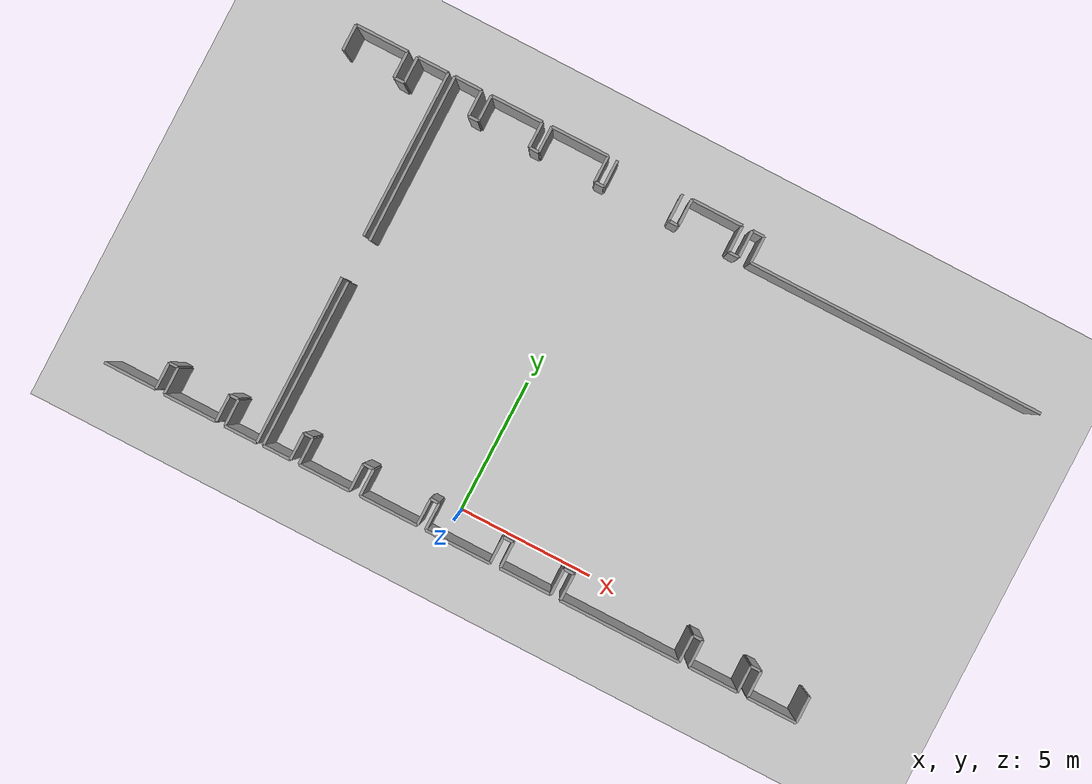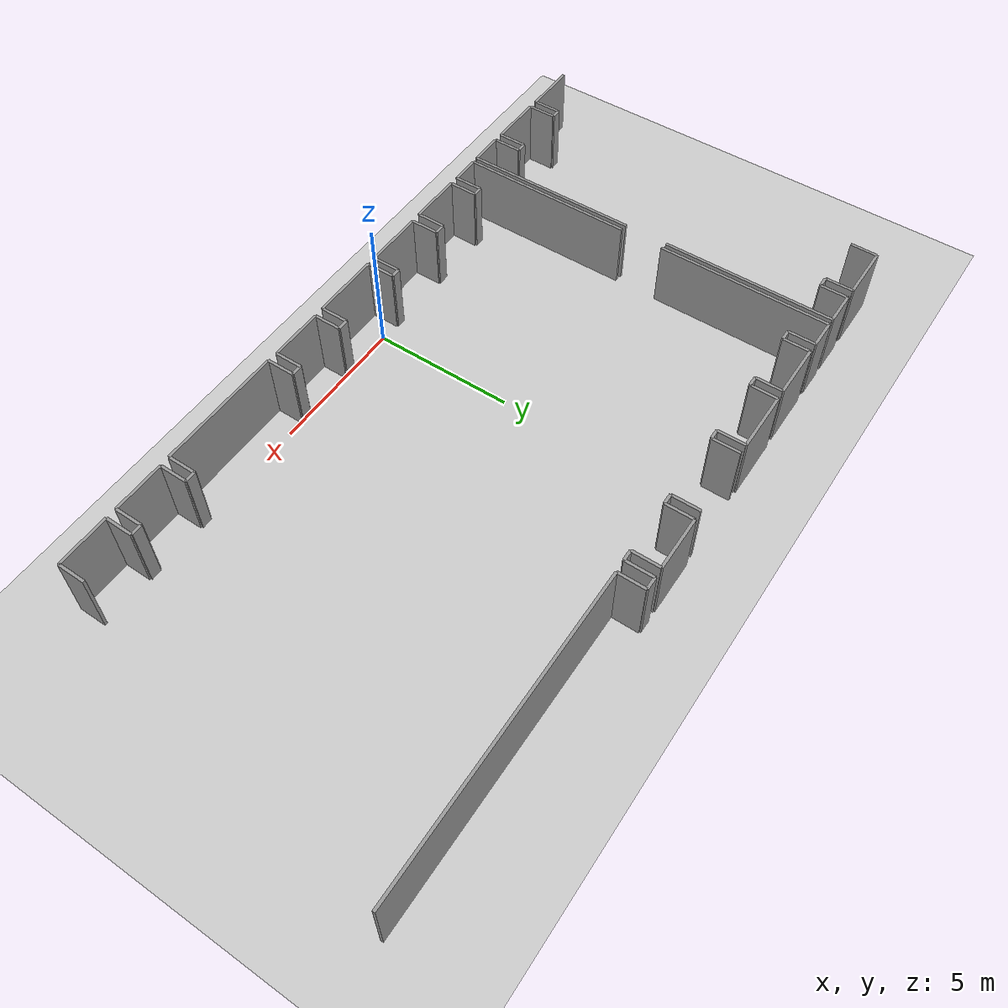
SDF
<sdf version="1.6">
 <world name="default">
  <model name="ground_plane">
   <static>1</static>
   <link name="link">
    <collision name="collision">
     <geometry><plane><normal>0 0 1</normal><size>100 100</size></plane></geometry>
     <surface><friction><ode><mu>100</mu><mu2>50</mu2></ode></friction></surface>
    </collision>
    <visual name="visual">
     <cast_shadows>0</cast_shadows>
     <geometry><plane><normal>0 0 1</normal><size>100 100</size></plane></geometry>
     <material>
      <script><uri>file://media/materials/scripts/gazebo.material</uri><name>Gazebo/Grey</name></script>
     </material>
    </visual>
   </link>
  </model>
  <model name="50010541">
   <static>1</static>
   <link name="Wall_0">
    <collision name="Wall_0_Collision">
     <geometry><box><size>1.21209043708 0.1 2.5</size></box></geometry>
     <pose>0.606045218539 0 1.25 0 0 0</pose>
    </collision>
    <visual name="Wall_0_Visual">
     <pose>0.606045218539 0 1.25 0 0 0</pose>
     <geometry><box><size>1.21209043708 0.1 2.5</size></box></geometry>
     <material>
      <script><uri>file://media/materials/scripts/gazebo.material</uri><name>Gazebo/Grey</name></script>
      <ambient>1 1 1 1</ambient>
     </material>
    </visual>
    <pose>45.8285199243 -14.0414862961 0 0 0 3.14159265359</pose>
   </link>
   <link name="Wall_1">
    <collision name="Wall_1_Collision">
     <geometry><box><size>1.00897515646 0.1 2.5</size></box></geometry>
     <pose>0.504487578231 0 1.25 0 0 0</pose>
    </collision>
    <visual name="Wall_1_Visual">
     <pose>0.504487578231 0 1.25 0 0 0</pose>
     <geometry><box><size>1.00897515646 0.1 2.5</size></box></geometry>
     <material>
      <script><uri>file://media/materials/scripts/gazebo.material</uri><name>Gazebo/Grey</name></script>
      <ambient>1 1 1 1</ambient>
     </material>
    </visual>
    <pose>44.6164294873 -14.0414862961 0 0 0 1.57079632679</pose>
   </link>
   <link name="Wall_2">
    <collision name="Wall_2_Collision">
     <geometry><box><size>0.333997689564 0.1 2.5</size></box></geometry>
     <pose>0.166998844782 0 1.25 0 0 0</pose>
    </collision>
    <visual name="Wall_2_Visual">
     <pose>0.166998844782 0 1.25 0 0 0</pose>
     <geometry><box><size>0.333997689564 0.1 2.5</size></box></geometry>
     <material>
      <script><uri>file://media/materials/scripts/gazebo.material</uri><name>Gazebo/Grey</name></script>
      <ambient>1 1 1 1</ambient>
     </material>
    </visual>
    <pose>44.6164294873 -13.0325111396 0 0 0 3.14159265359</pose>
   </link>
   <link name="Wall_3">
    <collision name="Wall_3_Collision">
     <geometry><box><size>1.00161222754 0.1 2.5</size></box></geometry>
     <pose>0.50080611377 0 1.25 0 0 0</pose>
    </collision>
    <visual name="Wall_3_Visual">
     <pose>0.50080611377 0 1.25 0 0 0</pose>
     <geometry><box><size>1.00161222754 0.1 2.5</size></box></geometry>
     <material>
      <script><uri>file://media/materials/scripts/gazebo.material</uri><name>Gazebo/Grey</name></script>
      <ambient>1 1 1 1</ambient>
     </material>
    </visual>
    <pose>44.2824317977 -13.0325111396 0 0 0 -1.57079632679</pose>
   </link>
   <link name="Wall_4">
    <collision name="Wall_4_Collision">
     <geometry><box><size>1.96691759867 0.1 2.5</size></box></geometry>
     <pose>0.983458799335 0 1.25 0 0 0</pose>
    </collision>
    <visual name="Wall_4_Visual">
     <pose>0.983458799335 0 1.25 0 0 0</pose>
     <geometry><box><size>1.96691759867 0.1 2.5</size></box></geometry>
     <material>
      <script><uri>file://media/materials/scripts/gazebo.material</uri><name>Gazebo/Grey</name></script>
      <ambient>1 1 1 1</ambient>
     </material>
    </visual>
    <pose>44.2824317977 -14.0341233671 0 0 0 3.14159265359</pose>
   </link>
   <link name="Wall_5">
    <collision name="Wall_5_Collision">
     <geometry><box><size>1.01608419128 0.1 2.5</size></box></geometry>
     <pose>0.508042095642 0 1.25 0 0 0</pose>
    </collision>
    <visual name="Wall_5_Visual">
     <pose>0.508042095642 0 1.25 0 0 0</pose>
     <geometry><box><size>1.01608419128 0.1 2.5</size></box></geometry>
     <material>
      <script><uri>file://media/materials/scripts/gazebo.material</uri><name>Gazebo/Grey</name></script>
      <ambient>1 1 1 1</ambient>
     </material>
    </visual>
    <pose>42.315514199 -14.0341233671 0 0 0 1.57079632679</pose>
   </link>
   <link name="Wall_6">
    <collision name="Wall_6_Collision">
     <geometry><box><size>0.337298312874 0.1 2.5</size></box></geometry>
     <pose>0.168649156437 0 1.25 0 0 0</pose>
    </collision>
    <visual name="Wall_6_Visual">
     <pose>0.168649156437 0 1.25 0 0 0</pose>
     <geometry><box><size>0.337298312874 0.1 2.5</size></box></geometry>
     <material>
      <script><uri>file://media/materials/scripts/gazebo.material</uri><name>Gazebo/Grey</name></script>
      <ambient>1 1 1 1</ambient>
     </material>
    </visual>
    <pose>42.315514199 -13.0180391759 0 0 0 3.14159265359</pose>
   </link>
   <link name="Wall_7">
    <collision name="Wall_7_Collision">
     <geometry><box><size>0.991583410559 0.1 2.5</size></box></geometry>
     <pose>0.49579170528 0 1.25 0 0 0</pose>
    </collision>
    <visual name="Wall_7_Visual">
     <pose>0.49579170528 0 1.25 0 0 0</pose>
     <geometry><box><size>0.991583410559 0.1 2.5</size></box></geometry>
     <material>
      <script><uri>file://media/materials/scripts/gazebo.material</uri><name>Gazebo/Grey</name></script>
      <ambient>1 1 1 1</ambient>
     </material>
    </visual>
    <pose>41.9782158862 -13.0180391759 0 0 0 -1.57079632679</pose>
   </link>
   <link name="Wall_8">
    <collision name="Wall_8_Collision">
     <geometry><box><size>1.94228987089 0.1 2.5</size></box></geometry>
     <pose>0.971144935447 0 1.25 0 0 0</pose>
    </collision>
    <visual name="Wall_8_Visual">
     <pose>0.971144935447 0 1.25 0 0 0</pose>
     <geometry><box><size>1.94228987089 0.1 2.5</size></box></geometry>
     <material>
      <script><uri>file://media/materials/scripts/gazebo.material</uri><name>Gazebo/Grey</name></script>
      <ambient>1 1 1 1</ambient>
     </material>
    </visual>
    <pose>41.9782158862 -14.0096225864 0 0 0 3.14159265359</pose>
   </link>
   <link name="Wall_149">
    <collision name="Wall_149_Collision">
     <geometry><box><size>0.959338859762 0.1 2.5</size></box></geometry>
     <pose>0.479669429881 0 1.25 0 0 0</pose>
    </collision>
    <visual name="Wall_149_Visual">
     <pose>0.479669429881 0 1.25 0 0 0</pose>
     <geometry><box><size>0.959338859762 0.1 2.5</size></box></geometry>
     <material>
      <script><uri>file://media/materials/scripts/gazebo.material</uri><name>Gazebo/Grey</name></script>
      <ambient>1 1 1 1</ambient>
     </material>
    </visual>
    <pose>42.3082782172 -0.988282787249 0 0 0 1.57079632679</pose>
   </link>
   <link name="Wall_150">
    <collision name="Wall_150_Collision">
     <geometry><box><size>1.95117616442 0.1 2.5</size></box></geometry>
     <pose>0.975588082211 0 1.25 0 0 0</pose>
    </collision>
    <visual name="Wall_150_Visual">
     <pose>0.975588082211 0 1.25 0 0 0</pose>
     <geometry><box><size>1.95117616442 0.1 2.5</size></box></geometry>
     <material>
      <script><uri>file://media/materials/scripts/gazebo.material</uri><name>Gazebo/Grey</name></script>
      <ambient>1 1 1 1</ambient>
     </material>
    </visual>
    <pose>42.3082782172 -0.0289439274879 0 0 0 0.0</pose>
   </link>
   <link name="Wall_151">
    <collision name="Wall_151_Collision">
     <geometry><box><size>0.980665964226 0.1 2.5</size></box></geometry>
     <pose>0.490332982113 0 1.25 0 0 0</pose>
    </collision>
    <visual name="Wall_151_Visual">
     <pose>0.490332982113 0 1.25 0 0 0</pose>
     <geometry><box><size>0.980665964226 0.1 2.5</size></box></geometry>
     <material>
      <script><uri>file://media/materials/scripts/gazebo.material</uri><name>Gazebo/Grey</name></script>
      <ambient>1 1 1 1</ambient>
     </material>
    </visual>
    <pose>44.2594543816 -0.0289439274879 0 0 0 -1.57079632679</pose>
   </link>
   <link name="Wall_152">
    <collision name="Wall_152_Collision">
     <geometry><box><size>0.381729780509 0.1 2.5</size></box></geometry>
     <pose>0.190864890254 0 1.25 0 0 0</pose>
    </collision>
    <visual name="Wall_152_Visual">
     <pose>0.190864890254 0 1.25 0 0 0</pose>
     <geometry><box><size>0.381729780509 0.1 2.5</size></box></geometry>
     <material>
      <script><uri>file://media/materials/scripts/gazebo.material</uri><name>Gazebo/Grey</name></script>
      <ambient>1 1 1 1</ambient>
     </material>
    </visual>
    <pose>44.2594543816 -1.00960989171 0 0 0 0.0</pose>
   </link>
   <link name="Wall_153">
    <collision name="Wall_153_Collision">
     <geometry><box><size>0.973556929405 0.1 2.5</size></box></geometry>
     <pose>0.486778464702 0 1.25 0 0 0</pose>
    </collision>
    <visual name="Wall_153_Visual">
     <pose>0.486778464702 0 1.25 0 0 0</pose>
     <geometry><box><size>0.973556929405 0.1 2.5</size></box></geometry>
     <material>
      <script><uri>file://media/materials/scripts/gazebo.material</uri><name>Gazebo/Grey</name></script>
      <ambient>1 1 1 1</ambient>
     </material>
    </visual>
    <pose>44.6411841621 -1.00960989171 0 0 0 1.57079632679</pose>
   </link>
   <link name="Wall_154">
    <collision name="Wall_154_Collision">
     <geometry><box><size>1.1693092811 0.1 2.5</size></box></geometry>
     <pose>0.584654640549 0 1.25 0 0 0</pose>
    </collision>
    <visual name="Wall_154_Visual">
     <pose>0.584654640549 0 1.25 0 0 0</pose>
     <geometry><box><size>1.1693092811 0.1 2.5</size></box></geometry>
     <material>
      <script><uri>file://media/materials/scripts/gazebo.material</uri><name>Gazebo/Grey</name></script>
      <ambient>1 1 1 1</ambient>
     </material>
    </visual>
    <pose>44.6411841621 -0.0360529623094 0 0 0 0.0</pose>
   </link>
   <link name="Wall_155">
    <collision name="Wall_155_Collision">
     <geometry><box><size>6.17406979549 0.1 2.5</size></box></geometry>
     <pose>3.08703489774 0 1.25 0 0 0</pose>
    </collision>
    <visual name="Wall_155_Visual">
     <pose>3.08703489774 0 1.25 0 0 0</pose>
     <geometry><box><size>6.17406979549 0.1 2.5</size></box></geometry>
     <material>
      <script><uri>file://media/materials/scripts/gazebo.material</uri><name>Gazebo/Grey</name></script>
      <ambient>1 1 1 1</ambient>
     </material>
    </visual>
    <pose>45.8104934432 -0.0360529623094 0 0 0 -1.57079632679</pose>
   </link>
   <link name="Wall_156">
    <collision name="Wall_156_Collision">
     <geometry><box><size>6.25381852363 0.1 2.5</size></box></geometry>
     <pose>3.12690926182 0 1.25 0 0 0</pose>
    </collision>
    <visual name="Wall_156_Visual">
     <pose>3.12690926182 0 1.25 0 0 0</pose>
     <geometry><box><size>6.25381852363 0.1 2.5</size></box></geometry>
     <material>
      <script><uri>file://media/materials/scripts/gazebo.material</uri><name>Gazebo/Grey</name></script>
      <ambient>1 1 1 1</ambient>
     </material>
    </visual>
    <pose>45.8104934432 -7.78769375294 0 0 0 -1.56791384691</pose>
   </link>
   <link name="Wall_192">
    <collision name="Wall_192_Collision">
     <geometry><box><size>0.984601322788 0.1 2.5</size></box></geometry>
     <pose>0.492300661394 0 1.25 0 0 0</pose>
    </collision>
    <visual name="Wall_192_Visual">
     <pose>0.492300661394 0 1.25 0 0 0</pose>
     <geometry><box><size>0.984601322788 0.1 2.5</size></box></geometry>
     <material>
      <script><uri>file://media/materials/scripts/gazebo.material</uri><name>Gazebo/Grey</name></script>
      <ambient>1 1 1 1</ambient>
     </material>
    </visual>
    <pose>66.2793089003 -13.0369542864 0 0 0 -1.57079632679</pose>
   </link>
   <link name="Wall_193">
    <collision name="Wall_193_Collision">
     <geometry><box><size>1.84289033044 0.1 2.5</size></box></geometry>
     <pose>0.921445165222 0 1.25 0 0 0</pose>
    </collision>
    <visual name="Wall_193_Visual">
     <pose>0.921445165222 0 1.25 0 0 0</pose>
     <geometry><box><size>1.84289033044 0.1 2.5</size></box></geometry>
     <material>
      <script><uri>file://media/materials/scripts/gazebo.material</uri><name>Gazebo/Grey</name></script>
      <ambient>1 1 1 1</ambient>
     </material>
    </visual>
    <pose>66.2793089003 -14.0215556092 0 0 0 3.14159265359</pose>
   </link>
   <link name="Wall_194">
    <collision name="Wall_194_Collision">
     <geometry><box><size>0.990948675308 0.1 2.5</size></box></geometry>
     <pose>0.495474337654 0 1.25 0 0 0</pose>
    </collision>
    <visual name="Wall_194_Visual">
     <pose>0.495474337654 0 1.25 0 0 0</pose>
     <geometry><box><size>0.990948675308 0.1 2.5</size></box></geometry>
     <material>
      <script><uri>file://media/materials/scripts/gazebo.material</uri><name>Gazebo/Grey</name></script>
      <ambient>1 1 1 1</ambient>
     </material>
    </visual>
    <pose>64.4364185698 -14.0215556092 0 0 0 1.57079632679</pose>
   </link>
   <link name="Wall_195">
    <collision name="Wall_195_Collision">
     <geometry><box><size>0.385030403819 0.1 2.5</size></box></geometry>
     <pose>0.192515201909 0 1.25 0 0 0</pose>
    </collision>
    <visual name="Wall_195_Visual">
     <pose>0.192515201909 0 1.25 0 0 0</pose>
     <geometry><box><size>0.385030403819 0.1 2.5</size></box></geometry>
     <material>
      <script><uri>file://media/materials/scripts/gazebo.material</uri><name>Gazebo/Grey</name></script>
      <ambient>1 1 1 1</ambient>
     </material>
    </visual>
    <pose>64.4364185698 -13.0306069338 0 0 0 3.14159265359</pose>
   </link>
   <link name="Wall_196">
    <collision name="Wall_196_Collision">
     <geometry><box><size>0.984601322788 0.1 2.5</size></box></geometry>
     <pose>0.492300661394 0 1.25 0 0 0</pose>
    </collision>
    <visual name="Wall_196_Visual">
     <pose>0.492300661394 0 1.25 0 0 0</pose>
     <geometry><box><size>0.984601322788 0.1 2.5</size></box></geometry>
     <material>
      <script><uri>file://media/materials/scripts/gazebo.material</uri><name>Gazebo/Grey</name></script>
      <ambient>1 1 1 1</ambient>
     </material>
    </visual>
    <pose>64.051388166 -13.0306069338 0 0 0 -1.57079632679</pose>
   </link>
   <link name="Wall_197">
    <collision name="Wall_197_Collision">
     <geometry><box><size>1.83666992497 0.1 2.5</size></box></geometry>
     <pose>0.918334962487 0 1.25 0 0 0</pose>
    </collision>
    <visual name="Wall_197_Visual">
     <pose>0.918334962487 0 1.25 0 0 0</pose>
     <geometry><box><size>1.83666992497 0.1 2.5</size></box></geometry>
     <material>
      <script><uri>file://media/materials/scripts/gazebo.material</uri><name>Gazebo/Grey</name></script>
      <ambient>1 1 1 1</ambient>
     </material>
    </visual>
    <pose>64.051388166 -14.0152082566 0 0 0 3.14159265359</pose>
   </link>
   <link name="Wall_198">
    <collision name="Wall_198_Collision">
     <geometry><box><size>1.0035164333 0.1 2.5</size></box></geometry>
     <pose>0.501758216648 0 1.25 0 0 0</pose>
    </collision>
    <visual name="Wall_198_Visual">
     <pose>0.501758216648 0 1.25 0 0 0</pose>
     <geometry><box><size>1.0035164333 0.1 2.5</size></box></geometry>
     <material>
      <script><uri>file://media/materials/scripts/gazebo.material</uri><name>Gazebo/Grey</name></script>
      <ambient>1 1 1 1</ambient>
     </material>
    </visual>
    <pose>62.214718241 -14.0152082566 0 0 0 1.57079632679</pose>
   </link>
   <link name="Wall_199">
    <collision name="Wall_199_Collision">
     <geometry><box><size>0.37233569878 0.1 2.5</size></box></geometry>
     <pose>0.18616784939 0 1.25 0 0 0</pose>
    </collision>
    <visual name="Wall_199_Visual">
     <pose>0.18616784939 0 1.25 0 0 0</pose>
     <geometry><box><size>0.37233569878 0.1 2.5</size></box></geometry>
     <material>
      <script><uri>file://media/materials/scripts/gazebo.material</uri><name>Gazebo/Grey</name></script>
      <ambient>1 1 1 1</ambient>
     </material>
    </visual>
    <pose>62.214718241 -13.0116918233 0 0 0 3.14159265359</pose>
   </link>
   <link name="Wall_200">
    <collision name="Wall_200_Collision">
     <geometry><box><size>1.0224315438 0.1 2.5</size></box></geometry>
     <pose>0.511215771902 0 1.25 0 0 0</pose>
    </collision>
    <visual name="Wall_200_Visual">
     <pose>0.511215771902 0 1.25 0 0 0</pose>
     <geometry><box><size>1.0224315438 0.1 2.5</size></box></geometry>
     <material>
      <script><uri>file://media/materials/scripts/gazebo.material</uri><name>Gazebo/Grey</name></script>
      <ambient>1 1 1 1</ambient>
     </material>
    </visual>
    <pose>61.8423825422 -13.0116918233 0 0 0 -1.57079632679</pose>
   </link>
   <link name="Wall_201">
    <collision name="Wall_201_Collision">
     <geometry><box><size>4.50458913587 0.1 2.5</size></box></geometry>
     <pose>2.25229456794 0 1.25 0 0 0</pose>
    </collision>
    <visual name="Wall_201_Visual">
     <pose>2.25229456794 0 1.25 0 0 0</pose>
     <geometry><box><size>4.50458913587 0.1 2.5</size></box></geometry>
     <material>
      <script><uri>file://media/materials/scripts/gazebo.material</uri><name>Gazebo/Grey</name></script>
      <ambient>1 1 1 1</ambient>
     </material>
    </visual>
    <pose>61.8423825422 -14.0341233671 0 0 0 3.14159265359</pose>
   </link>
   <link name="Wall_202">
    <collision name="Wall_202_Collision">
     <geometry><box><size>0.997803816028 0.1 2.5</size></box></geometry>
     <pose>0.498901908014 0 1.25 0 0 0</pose>
    </collision>
    <visual name="Wall_202_Visual">
     <pose>0.498901908014 0 1.25 0 0 0</pose>
     <geometry><box><size>0.997803816028 0.1 2.5</size></box></geometry>
     <material>
      <script><uri>file://media/materials/scripts/gazebo.material</uri><name>Gazebo/Grey</name></script>
      <ambient>1 1 1 1</ambient>
     </material>
    </visual>
    <pose>57.3377934064 -14.0341233671 0 0 0 1.57079632679</pose>
   </link>
   <link name="Wall_203">
    <collision name="Wall_203_Collision">
     <geometry><box><size>0.371954857629 0.1 2.5</size></box></geometry>
     <pose>0.185977428814 0 1.25 0 0 0</pose>
    </collision>
    <visual name="Wall_203_Visual">
     <pose>0.185977428814 0 1.25 0 0 0</pose>
     <geometry><box><size>0.371954857629 0.1 2.5</size></box></geometry>
     <material>
      <script><uri>file://media/materials/scripts/gazebo.material</uri><name>Gazebo/Grey</name></script>
      <ambient>1 1 1 1</ambient>
     </material>
    </visual>
    <pose>57.3377934064 -13.0363195511 0 0 0 3.14159265359</pose>
   </link>
   <link name="Wall_204">
    <collision name="Wall_204_Collision">
     <geometry><box><size>0.969875464944 0.1 2.5</size></box></geometry>
     <pose>0.484937732472 0 1.25 0 0 0</pose>
    </collision>
    <visual name="Wall_204_Visual">
     <pose>0.484937732472 0 1.25 0 0 0</pose>
     <geometry><box><size>0.969875464944 0.1 2.5</size></box></geometry>
     <material>
      <script><uri>file://media/materials/scripts/gazebo.material</uri><name>Gazebo/Grey</name></script>
      <ambient>1 1 1 1</ambient>
     </material>
    </visual>
    <pose>56.9658385487 -13.0363195511 0 0 0 -1.57079632679</pose>
   </link>
   <link name="Wall_205">
    <collision name="Wall_205_Collision">
     <geometry><box><size>1.92807180125 0.1 2.5</size></box></geometry>
     <pose>0.964035900626 0 1.25 0 0 0</pose>
    </collision>
    <visual name="Wall_205_Visual">
     <pose>0.964035900626 0 1.25 0 0 0</pose>
     <geometry><box><size>1.92807180125 0.1 2.5</size></box></geometry>
     <material>
      <script><uri>file://media/materials/scripts/gazebo.material</uri><name>Gazebo/Grey</name></script>
      <ambient>1 1 1 1</ambient>
     </material>
    </visual>
    <pose>56.9658385487 -14.0061950161 0 0 0 3.14159265359</pose>
   </link>
   <link name="Wall_206">
    <collision name="Wall_206_Collision">
     <geometry><box><size>0.976603658614 0.1 2.5</size></box></geometry>
     <pose>0.488301829307 0 1.25 0 0 0</pose>
    </collision>
    <visual name="Wall_206_Visual">
     <pose>0.488301829307 0 1.25 0 0 0</pose>
     <geometry><box><size>0.976603658614 0.1 2.5</size></box></geometry>
     <material>
      <script><uri>file://media/materials/scripts/gazebo.material</uri><name>Gazebo/Grey</name></script>
      <ambient>1 1 1 1</ambient>
     </material>
    </visual>
    <pose>55.0377667475 -14.0061950161 0 0 0 1.57079632679</pose>
   </link>
   <link name="Wall_207">
    <collision name="Wall_207_Collision">
     <geometry><box><size>0.37563632209 0.1 2.5</size></box></geometry>
     <pose>0.187818161045 0 1.25 0 0 0</pose>
    </collision>
    <visual name="Wall_207_Visual">
     <pose>0.187818161045 0 1.25 0 0 0</pose>
     <geometry><box><size>0.37563632209 0.1 2.5</size></box></geometry>
     <material>
      <script><uri>file://media/materials/scripts/gazebo.material</uri><name>Gazebo/Grey</name></script>
      <ambient>1 1 1 1</ambient>
     </material>
    </visual>
    <pose>55.0377667475 -13.0295913574 0 0 0 3.14159265359</pose>
   </link>
   <link name="Wall_208">
    <collision name="Wall_208_Collision">
     <geometry><box><size>0.993360669265 0.1 2.5</size></box></geometry>
     <pose>0.496680334632 0 1.25 0 0 0</pose>
    </collision>
    <visual name="Wall_208_Visual">
     <pose>0.496680334632 0 1.25 0 0 0</pose>
     <geometry><box><size>0.993360669265 0.1 2.5</size></box></geometry>
     <material>
      <script><uri>file://media/materials/scripts/gazebo.material</uri><name>Gazebo/Grey</name></script>
      <ambient>1 1 1 1</ambient>
     </material>
    </visual>
    <pose>54.6621304254 -13.0295913574 0 0 0 -1.57079632679</pose>
   </link>
   <link name="Wall_209">
    <collision name="Wall_209_Collision">
     <geometry><box><size>2.44309598466 0.1 2.5</size></box></geometry>
     <pose>1.22154799233 0 1.25 0 0 0</pose>
    </collision>
    <visual name="Wall_209_Visual">
     <pose>1.22154799233 0 1.25 0 0 0</pose>
     <geometry><box><size>2.44309598466 0.1 2.5</size></box></geometry>
     <material>
      <script><uri>file://media/materials/scripts/gazebo.material</uri><name>Gazebo/Grey</name></script>
      <ambient>1 1 1 1</ambient>
     </material>
    </visual>
    <pose>54.6621304254 -14.0229520267 0 0 0 3.14159265359</pose>
   </link>
   <link name="Wall_210">
    <collision name="Wall_210_Collision">
     <geometry><box><size>1.00681705661 0.1 2.5</size></box></geometry>
     <pose>0.503408528303 0 1.25 0 0 0</pose>
    </collision>
    <visual name="Wall_210_Visual">
     <pose>0.503408528303 0 1.25 0 0 0</pose>
     <geometry><box><size>1.00681705661 0.1 2.5</size></box></geometry>
     <material>
      <script><uri>file://media/materials/scripts/gazebo.material</uri><name>Gazebo/Grey</name></script>
      <ambient>1 1 1 1</ambient>
     </material>
    </visual>
    <pose>52.2190344407 -14.0229520267 0 0 0 1.57079632679</pose>
   </link>
   <link name="Wall_211">
    <collision name="Wall_211_Collision">
     <geometry><box><size>0.320033514021 0.1 2.5</size></box></geometry>
     <pose>0.160016757011 0 1.25 0 0 0</pose>
    </collision>
    <visual name="Wall_211_Visual">
     <pose>0.160016757011 0 1.25 0 0 0</pose>
     <geometry><box><size>0.320033514021 0.1 2.5</size></box></geometry>
     <material>
      <script><uri>file://media/materials/scripts/gazebo.material</uri><name>Gazebo/Grey</name></script>
      <ambient>1 1 1 1</ambient>
     </material>
    </visual>
    <pose>52.2190344407 -13.0161349701 0 0 0 3.14159265359</pose>
   </link>
   <link name="Wall_212">
    <collision name="Wall_212_Collision">
     <geometry><box><size>1.0045320097 0.1 2.5</size></box></geometry>
     <pose>0.502266004849 0 1.25 0 0 0</pose>
    </collision>
    <visual name="Wall_212_Visual">
     <pose>0.502266004849 0 1.25 0 0 0</pose>
     <geometry><box><size>1.0045320097 0.1 2.5</size></box></geometry>
     <material>
      <script><uri>file://media/materials/scripts/gazebo.material</uri><name>Gazebo/Grey</name></script>
      <ambient>1 1 1 1</ambient>
     </material>
    </visual>
    <pose>51.8990009267 -13.0161349701 0 0 0 -1.57079632679</pose>
   </link>
   <link name="Wall_213">
    <collision name="Wall_213_Collision">
     <geometry><box><size>2.16368552677 0.1 2.5</size></box></geometry>
     <pose>1.08184276338 0 1.25 0 0 0</pose>
    </collision>
    <visual name="Wall_213_Visual">
     <pose>1.08184276338 0 1.25 0 0 0</pose>
     <geometry><box><size>2.16368552677 0.1 2.5</size></box></geometry>
     <material>
      <script><uri>file://media/materials/scripts/gazebo.material</uri><name>Gazebo/Grey</name></script>
      <ambient>1 1 1 1</ambient>
     </material>
    </visual>
    <pose>51.8990009267 -14.0206669798 0 0 0 3.14159265359</pose>
   </link>
   <link name="Wall_214">
    <collision name="Wall_214_Collision">
     <geometry><box><size>1.0035164333 0.1 2.5</size></box></geometry>
     <pose>0.501758216648 0 1.25 0 0 0</pose>
    </collision>
    <visual name="Wall_214_Visual">
     <pose>0.501758216648 0 1.25 0 0 0</pose>
     <geometry><box><size>1.0035164333 0.1 2.5</size></box></geometry>
     <material>
      <script><uri>file://media/materials/scripts/gazebo.material</uri><name>Gazebo/Grey</name></script>
      <ambient>1 1 1 1</ambient>
     </material>
    </visual>
    <pose>49.7353153999 -14.0206669798 0 0 0 1.57079632679</pose>
   </link>
   <link name="Wall_215">
    <collision name="Wall_215_Collision">
     <geometry><box><size>0.383887880365 0.1 2.5</size></box></geometry>
     <pose>0.191943940183 0 1.25 0 0 0</pose>
    </collision>
    <visual name="Wall_215_Visual">
     <pose>0.191943940183 0 1.25 0 0 0</pose>
     <geometry><box><size>0.383887880365 0.1 2.5</size></box></geometry>
     <material>
      <script><uri>file://media/materials/scripts/gazebo.material</uri><name>Gazebo/Grey</name></script>
      <ambient>1 1 1 1</ambient>
     </material>
    </visual>
    <pose>49.7353153999 -13.0171505465 0 0 0 3.14159265359</pose>
   </link>
   <link name="Wall_216">
    <collision name="Wall_216_Collision">
     <geometry><box><size>1.01748060884 0.1 2.5</size></box></geometry>
     <pose>0.508740304419 0 1.25 0 0 0</pose>
    </collision>
    <visual name="Wall_216_Visual">
     <pose>0.508740304419 0 1.25 0 0 0</pose>
     <geometry><box><size>1.01748060884 0.1 2.5</size></box></geometry>
     <material>
      <script><uri>file://media/materials/scripts/gazebo.material</uri><name>Gazebo/Grey</name></script>
      <ambient>1 1 1 1</ambient>
     </material>
    </visual>
    <pose>49.3514275196 -13.0171505465 0 0 0 -1.57079632679</pose>
   </link>
   <link name="Wall_217">
    <collision name="Wall_217_Collision">
     <geometry><box><size>1.91982024298 0.1 2.5</size></box></geometry>
     <pose>0.959910121488 0 1.25 0 0 0</pose>
    </collision>
    <visual name="Wall_217_Visual">
     <pose>0.959910121488 0 1.25 0 0 0</pose>
     <geometry><box><size>1.91982024298 0.1 2.5</size></box></geometry>
     <material>
      <script><uri>file://media/materials/scripts/gazebo.material</uri><name>Gazebo/Grey</name></script>
      <ambient>1 1 1 1</ambient>
     </material>
    </visual>
    <pose>49.3514275196 -14.0346311553 0 0 0 3.14159265359</pose>
   </link>
   <link name="Wall_218">
    <collision name="Wall_218_Collision">
     <geometry><box><size>1.00795958006 0.1 2.5</size></box></geometry>
     <pose>0.50397979003 0 1.25 0 0 0</pose>
    </collision>
    <visual name="Wall_218_Visual">
     <pose>0.50397979003 0 1.25 0 0 0</pose>
     <geometry><box><size>1.00795958006 0.1 2.5</size></box></geometry>
     <material>
      <script><uri>file://media/materials/scripts/gazebo.material</uri><name>Gazebo/Grey</name></script>
      <ambient>1 1 1 1</ambient>
     </material>
    </visual>
    <pose>47.4316072766 -14.0346311553 0 0 0 1.57079632679</pose>
   </link>
   <link name="Wall_219">
    <collision name="Wall_219_Collision">
     <geometry><box><size>0.33602884237 0.1 2.5</size></box></geometry>
     <pose>0.168014421185 0 1.25 0 0 0</pose>
    </collision>
    <visual name="Wall_219_Visual">
     <pose>0.168014421185 0 1.25 0 0 0</pose>
     <geometry><box><size>0.33602884237 0.1 2.5</size></box></geometry>
     <material>
      <script><uri>file://media/materials/scripts/gazebo.material</uri><name>Gazebo/Grey</name></script>
      <ambient>1 1 1 1</ambient>
     </material>
    </visual>
    <pose>47.4316072766 -13.0266715753 0 0 0 3.14159265359</pose>
   </link>
   <link name="Wall_220">
    <collision name="Wall_220_Collision">
     <geometry><box><size>0.99831160423 0.1 2.5</size></box></geometry>
     <pose>0.499155802115 0 1.25 0 0 0</pose>
    </collision>
    <visual name="Wall_220_Visual">
     <pose>0.499155802115 0 1.25 0 0 0</pose>
     <geometry><box><size>0.99831160423 0.1 2.5</size></box></geometry>
     <material>
      <script><uri>file://media/materials/scripts/gazebo.material</uri><name>Gazebo/Grey</name></script>
      <ambient>1 1 1 1</ambient>
     </material>
    </visual>
    <pose>47.0955784342 -13.0266715753 0 0 0 -1.57079632679</pose>
   </link>
   <link name="Wall_221">
    <collision name="Wall_221_Collision">
     <geometry><box><size>1.03664961345 0.1 2.5</size></box></geometry>
     <pose>0.518324806723 0 1.25 0 0 0</pose>
    </collision>
    <visual name="Wall_221_Visual">
     <pose>0.518324806723 0 1.25 0 0 0</pose>
     <geometry><box><size>1.03664961345 0.1 2.5</size></box></geometry>
     <material>
      <script><uri>file://media/materials/scripts/gazebo.material</uri><name>Gazebo/Grey</name></script>
      <ambient>1 1 1 1</ambient>
     </material>
    </visual>
    <pose>47.0955784342 -14.0249831795 0 0 0 3.14159265359</pose>
   </link>
   <link name="Wall_222">
    <collision name="Wall_222_Collision">
     <geometry><box><size>6.21050359895 0.1 2.5</size></box></geometry>
     <pose>3.10525179947 0 1.25 0 0 0</pose>
    </collision>
    <visual name="Wall_222_Visual">
     <pose>3.10525179947 0 1.25 0 0 0</pose>
     <geometry><box><size>6.21050359895 0.1 2.5</size></box></geometry>
     <material>
      <script><uri>file://media/materials/scripts/gazebo.material</uri><name>Gazebo/Grey</name></script>
      <ambient>1 1 1 1</ambient>
     </material>
    </visual>
    <pose>46.0589288208 -14.0249831795 0 0 0 1.57079632679</pose>
   </link>
   <link name="Wall_223">
    <collision name="Wall_223_Collision">
     <geometry><box><size>6.22065936298 0.1 2.5</size></box></geometry>
     <pose>3.11032968149 0 1.25 0 0 0</pose>
    </collision>
    <visual name="Wall_223_Visual">
     <pose>3.11032968149 0 1.25 0 0 0</pose>
     <geometry><box><size>6.22065936298 0.1 2.5</size></box></geometry>
     <material>
      <script><uri>file://media/materials/scripts/gazebo.material</uri><name>Gazebo/Grey</name></script>
      <ambient>1 1 1 1</ambient>
     </material>
    </visual>
    <pose>46.0589288208 -6.25595064299 0 0 0 1.57079632679</pose>
   </link>
   <link name="Wall_224">
    <collision name="Wall_224_Collision">
     <geometry><box><size>1.01456082668 0.1 2.5</size></box></geometry>
     <pose>0.50728041334 0 1.25 0 0 0</pose>
    </collision>
    <visual name="Wall_224_Visual">
     <pose>0.50728041334 0 1.25 0 0 0</pose>
     <geometry><box><size>1.01456082668 0.1 2.5</size></box></geometry>
     <material>
      <script><uri>file://media/materials/scripts/gazebo.material</uri><name>Gazebo/Grey</name></script>
      <ambient>1 1 1 1</ambient>
     </material>
    </visual>
    <pose>46.0589288208 -0.0352912800071 0 0 0 0.0</pose>
   </link>
   <link name="Wall_225">
    <collision name="Wall_225_Collision">
     <geometry><box><size>0.96555926523 0.1 2.5</size></box></geometry>
     <pose>0.482779632615 0 1.25 0 0 0</pose>
    </collision>
    <visual name="Wall_225_Visual">
     <pose>0.482779632615 0 1.25 0 0 0</pose>
     <geometry><box><size>0.96555926523 0.1 2.5</size></box></geometry>
     <material>
      <script><uri>file://media/materials/scripts/gazebo.material</uri><name>Gazebo/Grey</name></script>
      <ambient>1 1 1 1</ambient>
     </material>
    </visual>
    <pose>47.0734896475 -0.0352912800071 0 0 0 -1.57079632679</pose>
   </link>
   <link name="Wall_226">
    <collision name="Wall_226_Collision">
     <geometry><box><size>0.37233569878 0.1 2.5</size></box></geometry>
     <pose>0.18616784939 0 1.25 0 0 0</pose>
    </collision>
    <visual name="Wall_226_Visual">
     <pose>0.18616784939 0 1.25 0 0 0</pose>
     <geometry><box><size>0.37233569878 0.1 2.5</size></box></geometry>
     <material>
      <script><uri>file://media/materials/scripts/gazebo.material</uri><name>Gazebo/Grey</name></script>
      <ambient>1 1 1 1</ambient>
     </material>
    </visual>
    <pose>47.0734896475 -1.00085054524 0 0 0 0.0</pose>
   </link>
   <link name="Wall_227">
    <collision name="Wall_227_Collision">
     <geometry><box><size>0.959338859762 0.1 2.5</size></box></geometry>
     <pose>0.479669429881 0 1.25 0 0 0</pose>
    </collision>
    <visual name="Wall_227_Visual">
     <pose>0.479669429881 0 1.25 0 0 0</pose>
     <geometry><box><size>0.959338859762 0.1 2.5</size></box></geometry>
     <material>
      <script><uri>file://media/materials/scripts/gazebo.material</uri><name>Gazebo/Grey</name></script>
      <ambient>1 1 1 1</ambient>
     </material>
    </visual>
    <pose>47.4458253462 -1.00085054524 0 0 0 1.57079632679</pose>
   </link>
   <link name="Wall_228">
    <collision name="Wall_228_Collision">
     <geometry><box><size>1.93137242456 0.1 2.5</size></box></geometry>
     <pose>0.965686212281 0 1.25 0 0 0</pose>
    </collision>
    <visual name="Wall_228_Visual">
     <pose>0.965686212281 0 1.25 0 0 0</pose>
     <geometry><box><size>1.93137242456 0.1 2.5</size></box></geometry>
     <material>
      <script><uri>file://media/materials/scripts/gazebo.material</uri><name>Gazebo/Grey</name></script>
      <ambient>1 1 1 1</ambient>
     </material>
    </visual>
    <pose>47.4458253462 -0.041511685476 0 0 0 0.0</pose>
   </link>
   <link name="Wall_229">
    <collision name="Wall_229_Collision">
     <geometry><box><size>0.953118454293 0.1 2.5</size></box></geometry>
     <pose>0.476559227146 0 1.25 0 0 0</pose>
    </collision>
    <visual name="Wall_229_Visual">
     <pose>0.476559227146 0 1.25 0 0 0</pose>
     <geometry><box><size>0.953118454293 0.1 2.5</size></box></geometry>
     <material>
      <script><uri>file://media/materials/scripts/gazebo.material</uri><name>Gazebo/Grey</name></script>
      <ambient>1 1 1 1</ambient>
     </material>
    </visual>
    <pose>49.3771977708 -0.041511685476 0 0 0 -1.57079632679</pose>
   </link>
   <link name="Wall_230">
    <collision name="Wall_230_Collision">
     <geometry><box><size>0.359640993742 0.1 2.5</size></box></geometry>
     <pose>0.179820496871 0 1.25 0 0 0</pose>
    </collision>
    <visual name="Wall_230_Visual">
     <pose>0.179820496871 0 1.25 0 0 0</pose>
     <geometry><box><size>0.359640993742 0.1 2.5</size></box></geometry>
     <material>
      <script><uri>file://media/materials/scripts/gazebo.material</uri><name>Gazebo/Grey</name></script>
      <ambient>1 1 1 1</ambient>
     </material>
    </visual>
    <pose>49.3771977708 -0.994630139769 0 0 0 0.0</pose>
   </link>
   <link name="Wall_231">
    <collision name="Wall_231_Collision">
     <geometry><box><size>0.965686212281 0.1 2.5</size></box></geometry>
     <pose>0.48284310614 0 1.25 0 0 0</pose>
    </collision>
    <visual name="Wall_231_Visual">
     <pose>0.48284310614 0 1.25 0 0 0</pose>
     <geometry><box><size>0.965686212281 0.1 2.5</size></box></geometry>
     <material>
      <script><uri>file://media/materials/scripts/gazebo.material</uri><name>Gazebo/Grey</name></script>
      <ambient>1 1 1 1</ambient>
     </material>
    </visual>
    <pose>49.7368387646 -0.994630139769 0 0 0 1.57079632679</pose>
   </link>
   <link name="Wall_232">
    <collision name="Wall_232_Collision">
     <geometry><box><size>2.13194876417 0.1 2.5</size></box></geometry>
     <pose>1.06597438209 0 1.25 0 0 0</pose>
    </collision>
    <visual name="Wall_232_Visual">
     <pose>1.06597438209 0 1.25 0 0 0</pose>
     <geometry><box><size>2.13194876417 0.1 2.5</size></box></geometry>
     <material>
      <script><uri>file://media/materials/scripts/gazebo.material</uri><name>Gazebo/Grey</name></script>
      <ambient>1 1 1 1</ambient>
     </material>
    </visual>
    <pose>49.7368387646 -0.0289439274879 0 0 0 0.0</pose>
   </link>
   <link name="Wall_233">
    <collision name="Wall_233_Collision">
     <geometry><box><size>0.979904281924 0.1 2.5</size></box></geometry>
     <pose>0.489952140962 0 1.25 0 0 0</pose>
    </collision>
    <visual name="Wall_233_Visual">
     <pose>0.489952140962 0 1.25 0 0 0</pose>
     <geometry><box><size>0.979904281924 0.1 2.5</size></box></geometry>
     <material>
      <script><uri>file://media/materials/scripts/gazebo.material</uri><name>Gazebo/Grey</name></script>
      <ambient>1 1 1 1</ambient>
     </material>
    </visual>
    <pose>51.8687875287 -0.0289439274879 0 0 0 -1.57079632679</pose>
   </link>
   <link name="Wall_234">
    <collision name="Wall_234_Collision">
     <geometry><box><size>0.34580376525 0.1 2.5</size></box></geometry>
     <pose>0.172901882625 0 1.25 0 0 0</pose>
    </collision>
    <visual name="Wall_234_Visual">
     <pose>0.172901882625 0 1.25 0 0 0</pose>
     <geometry><box><size>0.34580376525 0.1 2.5</size></box></geometry>
     <material>
      <script><uri>file://media/materials/scripts/gazebo.material</uri><name>Gazebo/Grey</name></script>
      <ambient>1 1 1 1</ambient>
     </material>
    </visual>
    <pose>51.8687875287 -1.00884820941 0 0 0 0.0</pose>
   </link>
   <link name="Wall_235">
    <collision name="Wall_235_Collision">
     <geometry><box><size>0.993360669265 0.1 2.5</size></box></geometry>
     <pose>0.496680334632 0 1.25 0 0 0</pose>
    </collision>
    <visual name="Wall_235_Visual">
     <pose>0.496680334632 0 1.25 0 0 0</pose>
     <geometry><box><size>0.993360669265 0.1 2.5</size></box></geometry>
     <material>
      <script><uri>file://media/materials/scripts/gazebo.material</uri><name>Gazebo/Grey</name></script>
      <ambient>1 1 1 1</ambient>
     </material>
    </visual>
    <pose>52.214591294 -1.00884820941 0 0 0 1.57079632679</pose>
   </link>
   <link name="Wall_236">
    <collision name="Wall_236_Collision">
     <geometry><box><size>1.00440506265 0.1 2.5</size></box></geometry>
     <pose>0.502202531324 0 1.25 0 0 0</pose>
    </collision>
    <visual name="Wall_236_Visual">
     <pose>0.502202531324 0 1.25 0 0 0</pose>
     <geometry><box><size>1.00440506265 0.1 2.5</size></box></geometry>
     <material>
      <script><uri>file://media/materials/scripts/gazebo.material</uri><name>Gazebo/Grey</name></script>
      <ambient>1 1 1 1</ambient>
     </material>
    </visual>
    <pose>54.6843461592 -0.015487540147 0 0 0 -1.57079632679</pose>
   </link>
   <link name="Wall_237">
    <collision name="Wall_237_Collision">
     <geometry><box><size>0.362179934749 0.1 2.5</size></box></geometry>
     <pose>0.181089967375 0 1.25 0 0 0</pose>
    </collision>
    <visual name="Wall_237_Visual">
     <pose>0.181089967375 0 1.25 0 0 0</pose>
     <geometry><box><size>0.362179934749 0.1 2.5</size></box></geometry>
     <material>
      <script><uri>file://media/materials/scripts/gazebo.material</uri><name>Gazebo/Grey</name></script>
      <ambient>1 1 1 1</ambient>
     </material>
    </visual>
    <pose>54.6843461592 -1.0198926028 0 0 0 0.0</pose>
   </link>
   <link name="Wall_238">
    <collision name="Wall_238_Collision">
     <geometry><box><size>0.998946339482 0.1 2.5</size></box></geometry>
     <pose>0.499473169741 0 1.25 0 0 0</pose>
    </collision>
    <visual name="Wall_238_Visual">
     <pose>0.499473169741 0 1.25 0 0 0</pose>
     <geometry><box><size>0.998946339482 0.1 2.5</size></box></geometry>
     <material>
      <script><uri>file://media/materials/scripts/gazebo.material</uri><name>Gazebo/Grey</name></script>
      <ambient>1 1 1 1</ambient>
     </material>
    </visual>
    <pose>55.046526094 -1.0198926028 0 0 0 1.57079632679</pose>
   </link>
   <link name="Wall_239">
    <collision name="Wall_239_Collision">
     <geometry><box><size>1.91537709621 0.1 2.5</size></box></geometry>
     <pose>0.957688548107 0 1.25 0 0 0</pose>
    </collision>
    <visual name="Wall_239_Visual">
     <pose>0.957688548107 0 1.25 0 0 0</pose>
     <geometry><box><size>1.91537709621 0.1 2.5</size></box></geometry>
     <material>
      <script><uri>file://media/materials/scripts/gazebo.material</uri><name>Gazebo/Grey</name></script>
      <ambient>1 1 1 1</ambient>
     </material>
    </visual>
    <pose>55.046526094 -0.0209462633136 0 0 0 0.0</pose>
   </link>
   <link name="Wall_240">
    <collision name="Wall_240_Collision">
     <geometry><box><size>0.998946339482 0.1 2.5</size></box></geometry>
     <pose>0.499473169741 0 1.25 0 0 0</pose>
    </collision>
    <visual name="Wall_240_Visual">
     <pose>0.499473169741 0 1.25 0 0 0</pose>
     <geometry><box><size>0.998946339482 0.1 2.5</size></box></geometry>
     <material>
      <script><uri>file://media/materials/scripts/gazebo.material</uri><name>Gazebo/Grey</name></script>
      <ambient>1 1 1 1</ambient>
     </material>
    </visual>
    <pose>56.9619031902 -0.0209462633136 0 0 0 -1.57079632679</pose>
   </link>
   <link name="Wall_241">
    <collision name="Wall_241_Collision">
     <geometry><box><size>0.373224328133 0.1 2.5</size></box></geometry>
     <pose>0.186612164066 0 1.25 0 0 0</pose>
    </collision>
    <visual name="Wall_241_Visual">
     <pose>0.186612164066 0 1.25 0 0 0</pose>
     <geometry><box><size>0.373224328133 0.1 2.5</size></box></geometry>
     <material>
      <script><uri>file://media/materials/scripts/gazebo.material</uri><name>Gazebo/Grey</name></script>
      <ambient>1 1 1 1</ambient>
     </material>
    </visual>
    <pose>56.9619031902 -1.0198926028 0 0 0 0.0</pose>
   </link>
   <link name="Wall_242">
    <collision name="Wall_242_Collision">
     <geometry><box><size>1.00440506265 0.1 2.5</size></box></geometry>
     <pose>0.502202531324 0 1.25 0 0 0</pose>
    </collision>
    <visual name="Wall_242_Visual">
     <pose>0.502202531324 0 1.25 0 0 0</pose>
     <geometry><box><size>1.00440506265 0.1 2.5</size></box></geometry>
     <material>
      <script><uri>file://media/materials/scripts/gazebo.material</uri><name>Gazebo/Grey</name></script>
      <ambient>1 1 1 1</ambient>
     </material>
    </visual>
    <pose>57.3351275183 -1.0198926028 0 0 0 1.57079632679</pose>
   </link>
   <link name="Wall_243">
    <collision name="Wall_243_Collision">
     <geometry><box><size>0.447488352608 0.1 2.5</size></box></geometry>
     <pose>0.223744176304 0 1.25 0 0 0</pose>
    </collision>
    <visual name="Wall_243_Visual">
     <pose>0.223744176304 0 1.25 0 0 0</pose>
     <geometry><box><size>0.447488352608 0.1 2.5</size></box></geometry>
     <material>
      <script><uri>file://media/materials/scripts/gazebo.material</uri><name>Gazebo/Grey</name></script>
      <ambient>1 1 1 1</ambient>
     </material>
    </visual>
    <pose>57.3351275183 -0.015487540147 0 0 0 0.0</pose>
   </link>
   <link name="Wall_244">
    <collision name="Wall_244_Collision">
     <geometry><box><size>0.979396493722 0.1 2.5</size></box></geometry>
     <pose>0.489698246861 0 1.25 0 0 0</pose>
    </collision>
    <visual name="Wall_244_Visual">
     <pose>0.489698246861 0 1.25 0 0 0</pose>
     <geometry><box><size>0.979396493722 0.1 2.5</size></box></geometry>
     <material>
      <script><uri>file://media/materials/scripts/gazebo.material</uri><name>Gazebo/Grey</name></script>
      <ambient>1 1 1 1</ambient>
     </material>
    </visual>
    <pose>57.7826158709 -0.015487540147 0 0 0 -1.57079632679</pose>
   </link>
   <link name="Wall_245">
    <collision name="Wall_245_Collision">
     <geometry><box><size>11.0058014802 0.1 2.5</size></box></geometry>
     <pose>5.5029007401 0 1.25 0 0 0</pose>
    </collision>
    <visual name="Wall_245_Visual">
     <pose>5.5029007401 0 1.25 0 0 0</pose>
     <geometry><box><size>11.0058014802 0.1 2.5</size></box></geometry>
     <material>
      <script><uri>file://media/materials/scripts/gazebo.material</uri><name>Gazebo/Grey</name></script>
      <ambient>1 1 1 1</ambient>
     </material>
    </visual>
    <pose>57.7826158709 -0.994884033869 0 0 0 0.0</pose>
   </link>
   <pose>-52.95 13.0612481434 0 0 0 0</pose>
  </model>
 </world>
</sdf>
